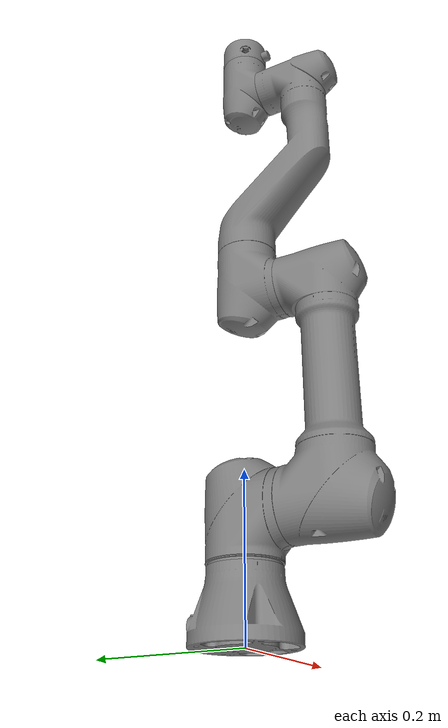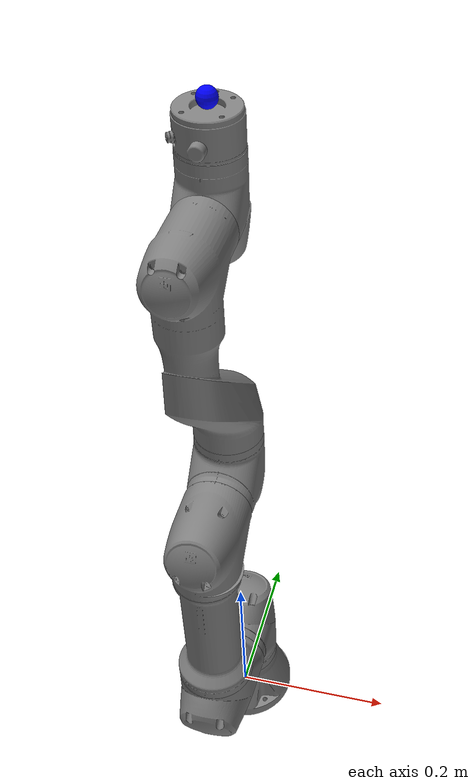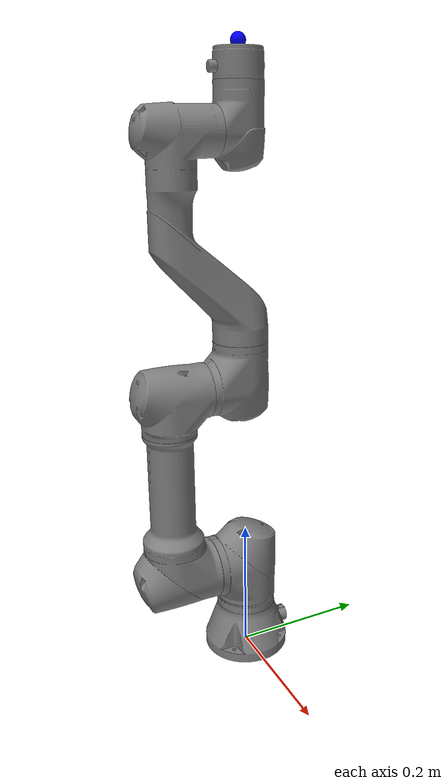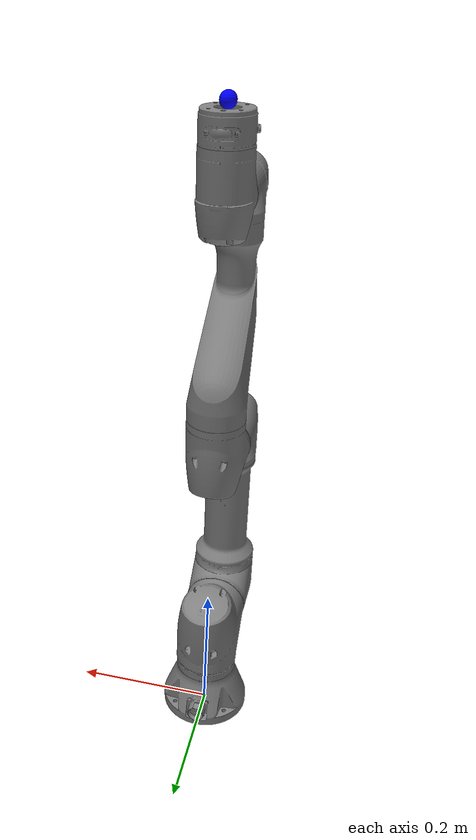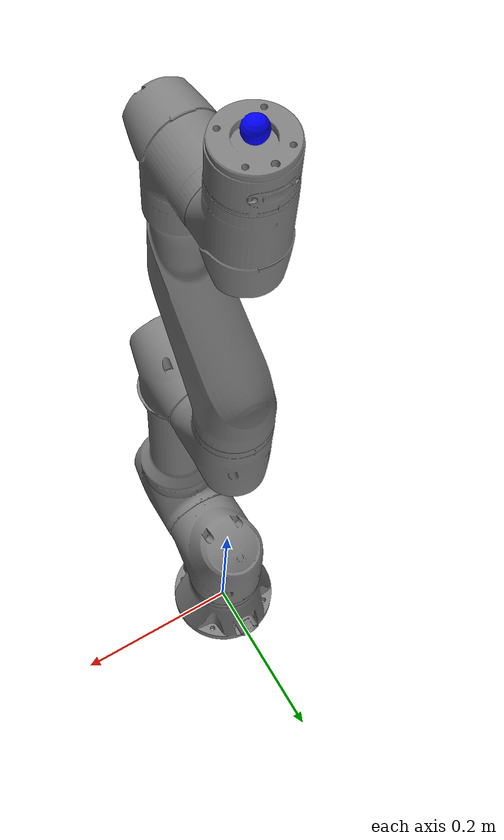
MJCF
<mujoco model="rb3_730es_u">

  <option integrator="implicitfast" />

  <actuator>
    <motor ctrllimited="true" ctrlrange="-150.0 150.0" joint="shoulder_pan_joint" name="torq_j1" />
    <motor ctrllimited="true" ctrlrange="-150.0 150.0" joint="shoulder_lift_joint" name="torq_j2" />
    <motor ctrllimited="true" ctrlrange="-150.0 150.0" joint="elbow_joint" name="torq_j3" />
    <motor ctrllimited="true" ctrlrange="-28.0 28.0" joint="wrist1_joint" name="torq_j4" />
    <motor ctrllimited="true" ctrlrange="-28.0 28.0" joint="wrist2_joint" name="torq_j5" />
    <motor ctrllimited="true" ctrlrange="-28.0 28.0" joint="wrist3_joint" name="torq_j6" />
  </actuator>

  <asset>
    <mesh name="link0" file="meshes/link0.stl"/>
    <mesh name="link1" file="meshes/link1.stl"/>
    <mesh name="link2" file="meshes/link2.stl"/>
    <mesh name="link3" file="meshes/link3.stl"/>
    <mesh name="link4" file="meshes/link4.stl"/>
    <mesh name="link5" file="meshes/link5.stl"/>
    <mesh name="link6" file="meshes/link6.stl"/>
  </asset>

  <default>
    <default class="rb3_730es_u">
      <material specular="0.5" shininess="0.25" />
      <joint axis="0 1 0" range="-6.28319 6.28319" armature="0.1" />
      <general biastype="affine" ctrlrange="-6.2831 6.2831" gainprm="5000" biasprm="0 -5000 -500"/>

      <site size="0.001" rgba="0.5 0.5 0.5 0.3" group="4" />
    </default>
  </default>

  <worldbody>
  <body name="base" pos="0 0 0">
    <!-- robot view -->
    <camera mode="fixed" name="robotview" pos="1.0 0 0.4" quat="0.653 0.271 0.271 0.653"/>
    <inertial diaginertia="0 0 0" mass="0" pos="0 0 0"/>
    <!-- mount attached here -->

    <geom type="mesh" contype="0" conaffinity="0" group="1" density="0" mesh="link0"/>
    <geom type="mesh" mesh="link0"/>
    <body name="link1" pos="0 0 0.1484">  <!-- 0.1453 was the original value -->
      <inertial pos="0.000101 -0.003241 -0.017587" mass="2.058" diaginertia="0.003 0.003 0.002"/>
      <joint name="shoulder_pan_joint" pos="0 0 0" axis="0 0 1" limited="true" range="-6.28319 6.28319" damping="0.001" frictionloss="0.01"/>
      <geom type="mesh" contype="0" conaffinity="0" group="1" density="0" mesh="link1"/>
      <geom type="mesh" mesh="link1"/>
      <body name="link2">
        <inertial pos="-4.9e-05 -0.095326 0.121743" mass="4.227" diaginertia="0.075 0.073 0.005"/>
        <joint name="shoulder_lift_joint" pos="0 0 0" axis="0 1 0" limited="true" range="-6.28319 6.28319" damping="0.001" frictionloss="0.01"/>
        <geom type="mesh" contype="0" conaffinity="0" group="1" density="0" mesh="link2"/>
        <geom type="mesh" mesh="link2"/>
        <body name="link3" pos="0 -0.00645 0.286">
          <inertial pos="0 -0.004 0.026" mass="1.45" diaginertia="0.002 0.002 0.001"/>
          <joint name="elbow_joint" pos="0 0 0" axis="0 1 0" limited="true" range="-6.28319 6.28319" damping="0.001" frictionloss="0.01"/>
          <geom type="mesh" contype="0" conaffinity="0" group="1" density="0" mesh="link3"/>
          <geom type="mesh" mesh="link3"/>
          <body name="link4">
            <inertial pos="0 -0.065 0.264" quat="0.992508 0.122183 0 0" mass="1.798" diaginertia="0.02 0.019 0.002"/>
            <joint name="wrist1_joint" pos="0 0 0" axis="0 0 1" limited="true" range="-6.28319 6.28319" damping="0.001" frictionloss="0.01"/>
            <geom type="mesh" contype="0" conaffinity="0" group="1" density="0" mesh="link4"/>
            <geom type="mesh" mesh="link4"/>
            <body name="link5" pos="0 0 0.344">
              <inertial pos="0 -0.001 0.017" quat="0.829513 -0.0210279 0.0255432 0.557507" mass="0.944" diaginertia="0.000789998 0.000774598 0.000513916"/>
              <joint name="wrist2_joint" pos="0 0 0" axis="0 1 0" limited="true" range="-6.28319 6.28319" damping="0.001" frictionloss="0.01"/>
              <geom type="mesh" contype="0" conaffinity="0" group="1" density="0" mesh="link5"/>
              <geom type="mesh" mesh="link5"/>
              <body name="link6">
                <inertial pos="-0.001 -0.001 0.068" quat="0.523579 0.501214 -0.49427 0.479945" mass="0.05" diaginertia="3.52563e-05 2.62915e-05 1.68733e-05"/>
                <joint name="wrist3_joint" pos="0 0 0" axis="0 0 1" limited="true" range="-6.28319 6.28319" damping="0.001" frictionloss="0.01"/>
                <geom type="mesh" contype="0" conaffinity="0" group="1" density="0" mesh="link6"/>
                <geom type="mesh" mesh="link6"/>

                <body name="right_hand" pos="0 0 0.107" quat="-0.707108 0 0 -0.707108"> <!-- euler 0 0 -1.57 to quat -->
                  <!-- This sites were added for visualization. They are all standardized between models-->
                  <!-- Position mimics the gripper attachment point (right_hand) -->
                  <!--  Y-axis should be perpendicular to grasping motion, and Z-axis should point out of the robot eef -->
                  <site name="ee" pos="0 0 0" size="0.01 0.01 0.01" rgba="0 0 1 1" type="sphere" group="1"/>
                  <site name="ee_x" pos="0 0 0" size="0.005 .1"  quat="0.707105 0.707108 0 0 " rgba="1 0 0 0" type="cylinder" group="1"/>
                  <site name="ee_z" pos="0 0 0" size="0.005 .1" quat="0.707105 0 0 0.707108" rgba="0 0 1 0" type="cylinder" group="1"/>
                  <site name="ee_y" pos="0 0 0" size="0.005 .1" quat="0.707105 0 0.707108 0 " rgba="0 1 0 0" type="cylinder" group="1"/>
                  <!-- This camera points out from the eef. -->
                  <camera mode="fixed" name="eye_in_hand" pos="0.05 0 0" quat="0 0.707108 0.707108 0" fovy="75"/>
                  <!-- to add gripper -->
                </body> <!-- end of right_hand -->

              </body> <!-- end of link6 -->
            </body> <!-- end of link5 -->
          </body> <!-- end of link4 -->
        </body> <!-- end of link3 -->
      </body>  <!-- end of link2 -->
    </body> <!-- end of link1 -->
  </body> <!-- end of base -->
  </worldbody>

  <sensor>
    <force name="force" site ='ee'/>
    <torque name="torque" site='ee' />
  </sensor>

</mujoco>
